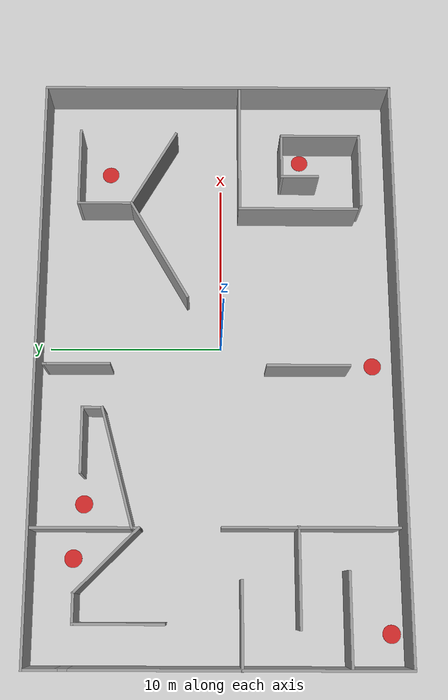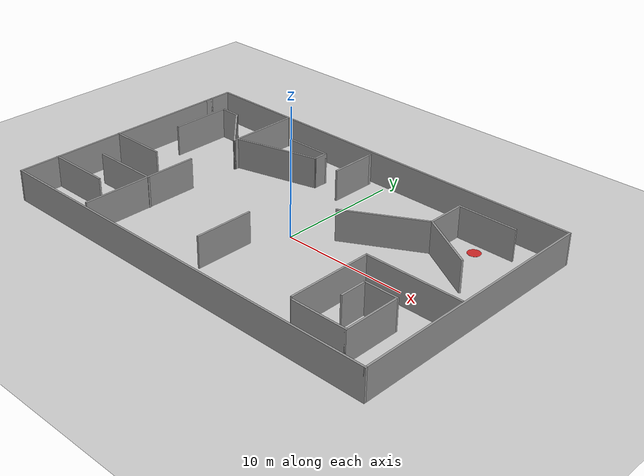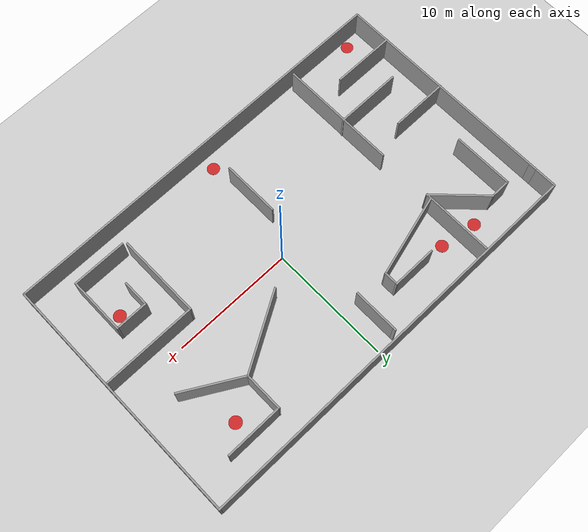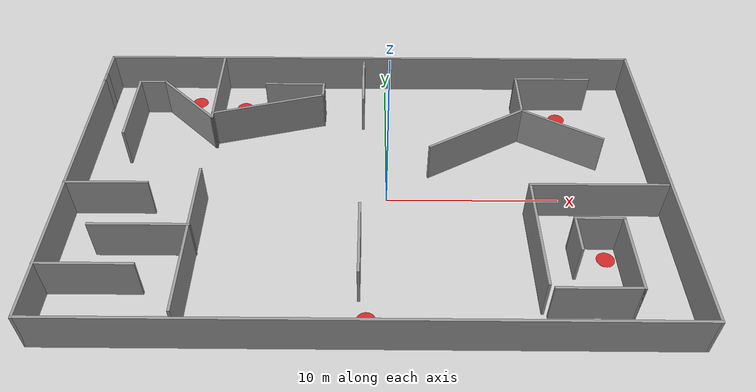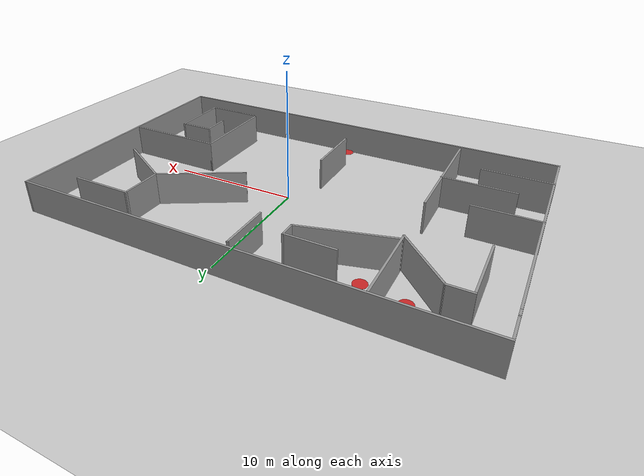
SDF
<sdf version="1.6">
 <world name="default">
  <light name="sun" type="directional">
   <pose>0 0 10 0 -0 0</pose>
   <diffuse>0.8 0.8 0.8 1</diffuse>
   <specular>0.2 0.2 0.2 1</specular>
   <attenuation>
    <range>1000</range>
    <constant>0.9</constant>
    <linear>0.01</linear>
    <quadratic>0.001</quadratic>
   </attenuation>
   <direction>-0.5 0.1 -0.9</direction>
  </light>
  <model name="ground_plane">
   <static>1</static>
   <link name="link">
    <collision name="collision">
     <geometry><plane><normal>0 0 1</normal><size>100 100</size></plane></geometry>
     <surface>
      <contact><collide_bitmask>65535</collide_bitmask></contact>
      <friction><ode><mu>100</mu><mu2>50</mu2></ode></friction>
     </surface>
    </collision>
    <visual name="visual">
     <cast_shadows>0</cast_shadows>
     <geometry><plane><normal>0 0 1</normal><size>100 100</size></plane></geometry>
     <material>
      <script><uri>file://media/materials/scripts/gazebo.material</uri><name>Gazebo/Grey</name></script>
     </material>
    </visual>
   </link>
  </model>
  <gravity>0 0 -9.8</gravity>
  <magnetic_field>6e-06 2.3e-05 -4.2e-05</magnetic_field>
  <atmosphere type="adiabatic"/>
  <physics name="default_physics" default="0" type="ode">
   <max_step_size>0.001</max_step_size>
   <real_time_factor>1</real_time_factor>
   <real_time_update_rate>1000</real_time_update_rate>
  </physics>
  <scene><ambient>0.4 0.4 0.4 1</ambient><background>0.7 0.7 0.7 1</background><shadows>1</shadows></scene>
  <audio><device>default</device></audio>
  <spherical_coordinates>
   <surface_model>EARTH_WGS84</surface_model>
   <latitude_deg>0</latitude_deg>
   <longitude_deg>0</longitude_deg>
   <elevation>0</elevation>
   <heading_deg>0</heading_deg>
  </spherical_coordinates>
  <model name="maze2">
   <pose>-1.10759 0.206475 0 0 -0 0</pose>
   <link name="Wall_14">
    <collision name="Wall_14_Collision">
     <geometry><box><size>18.25 0.15 2.5</size></box></geometry>
     <pose>0 0 1.25 0 -0 0</pose>
    </collision>
    <visual name="Wall_14_Visual">
     <pose>0 0 1.25 0 -0 0</pose>
     <geometry><box><size>18.25 0.15 2.5</size></box></geometry>
     <material>
      <script><uri>file://media/materials/scripts/gazebo.material</uri><name>Gazebo/Grey</name></script>
      <ambient>1 1 1 1</ambient>
     </material>
     <meta><layer>0</layer></meta>
    </visual>
    <pose>-16.7907 -1.25 0 0 -0 -1.5708</pose>
   </link>
   <link name="Wall_15">
    <collision name="Wall_15_Collision">
     <geometry><box><size>33.75 0.15 2.5</size></box></geometry>
     <pose>0 0 1.25 0 -0 0</pose>
    </collision>
    <visual name="Wall_15_Visual">
     <pose>0 0 1.25 0 -0 0</pose>
     <geometry><box><size>33.75 0.15 2.5</size></box></geometry>
     <material>
      <script><uri>file://media/materials/scripts/gazebo.material</uri><name>Gazebo/Grey</name></script>
      <ambient>1 1 1 1</ambient>
     </material>
     <meta><layer>0</layer></meta>
    </visual>
    <pose>0.009349 -10.3 0 0 -0 0</pose>
   </link>
   <link name="Wall_16">
    <collision name="Wall_16_Collision">
     <geometry><box><size>20.75 0.15 2.5</size></box></geometry>
     <pose>0 0 1.25 0 -0 0</pose>
    </collision>
    <visual name="Wall_16_Visual">
     <pose>0 0 1.25 0 -0 0</pose>
     <geometry><box><size>20.75 0.15 2.5</size></box></geometry>
     <material>
      <script><uri>file://media/materials/scripts/gazebo.material</uri><name>Gazebo/Grey</name></script>
      <ambient>1 1 1 1</ambient>
     </material>
     <meta><layer>0</layer></meta>
    </visual>
    <pose>16.8093 0 0 0 -0 1.5708</pose>
   </link>
   <link name="Wall_17">
    <collision name="Wall_17_Collision">
     <geometry><box><size>33.75 0.15 2.5</size></box></geometry>
     <pose>0 0 1.25 0 -0 0</pose>
    </collision>
    <visual name="Wall_17_Visual">
     <pose>0 0 1.25 0 -0 0</pose>
     <geometry><box><size>33.75 0.15 2.5</size></box></geometry>
     <material>
      <script><uri>file://media/materials/scripts/gazebo.material</uri><name>Gazebo/Grey</name></script>
      <ambient>1 1 1 1</ambient>
     </material>
     <meta><layer>0</layer></meta>
    </visual>
    <pose>0.009349 10.3 0 0 -0 3.14159</pose>
   </link>
   <link name="Wall_18">
    <collision name="Wall_18_Collision">
     <geometry><box><size>2 0.15 2.5</size></box></geometry>
     <pose>0 0 1.25 0 -0 0</pose>
    </collision>
    <visual name="Wall_18_Visual">
     <pose>0 0 1.25 0 -0 0</pose>
     <geometry><box><size>2 0.15 2.5</size></box></geometry>
     <material>
      <script><uri>file://media/materials/scripts/gazebo.material</uri><name>Gazebo/Grey</name></script>
      <ambient>1 1 1 1</ambient>
     </material>
     <meta><layer>0</layer></meta>
    </visual>
    <pose>-16.7907 9.375 0 0 -0 -1.5708</pose>
   </link>
   <link name="Wall_19">
    <collision name="Wall_19_Collision">
     <geometry><box><size>0.8 0.15 2.5</size></box></geometry>
     <pose>0 0 1.25 0 -0 0</pose>
    </collision>
    <visual name="Wall_19_Visual">
     <pose>0 0 1.25 0 -0 0</pose>
     <geometry><box><size>0.8 0.15 2.5</size></box></geometry>
     <material>
      <script><uri>file://media/materials/scripts/gazebo.material</uri><name>Gazebo/Grey</name></script>
      <ambient>1 1 1 1</ambient>
     </material>
     <meta><layer>0</layer></meta>
    </visual>
    <pose>-16.7907 8.125 0 0 -0 -1.5708</pose>
   </link>
   <link name="Wall_21">
    <collision name="Wall_21_Collision">
     <geometry><box><size>6 0.15 2.5</size></box></geometry>
     <pose>0 0 1.25 0 -0 0</pose>
    </collision>
    <visual name="Wall_21_Visual">
     <pose>0 0 1.25 0 -0 0</pose>
     <geometry><box><size>6 0.15 2.5</size></box></geometry>
     <material>
      <script><uri>file://media/materials/scripts/gazebo.material</uri><name>Gazebo/Grey</name></script>
      <ambient>1 1 1 1</ambient>
     </material>
     <meta><layer>0</layer></meta>
    </visual>
    <pose>-9.44778 7.20738 0 0 -0 -1.5708</pose>
   </link>
   <link name="Wall_22">
    <collision name="Wall_22_Collision">
     <geometry><box><size>5 0.15 2.5</size></box></geometry>
     <pose>0 0 1.25 0 -0 0</pose>
    </collision>
    <visual name="Wall_22_Visual">
     <pose>0 0 1.25 0 -0 0</pose>
     <geometry><box><size>5 0.15 2.5</size></box></geometry>
     <material>
      <script><uri>file://media/materials/scripts/gazebo.material</uri><name>Gazebo/Grey</name></script>
      <ambient>1 1 1 1</ambient>
     </material>
     <meta><layer>0</layer></meta>
    </visual>
    <pose>-11.1625 5.99711 0 0 -0 2.35619</pose>
   </link>
   <link name="Wall_23">
    <collision name="Wall_23_Collision">
     <geometry><box><size>1.75 0.15 2.5</size></box></geometry>
     <pose>0 0 1.25 0 -0 0</pose>
    </collision>
    <visual name="Wall_23_Visual">
     <pose>0 0 1.25 0 -0 0</pose>
     <geometry><box><size>1.75 0.15 2.5</size></box></geometry>
     <material>
      <script><uri>file://media/materials/scripts/gazebo.material</uri><name>Gazebo/Grey</name></script>
      <ambient>1 1 1 1</ambient>
     </material>
     <meta><layer>0</layer></meta>
    </visual>
    <pose>-13.6773 7.71184 0 0 -0 3.14159</pose>
   </link>
   <link name="Wall_24">
    <collision name="Wall_24_Collision">
     <geometry><box><size>5 0.15 2.5</size></box></geometry>
     <pose>0 0 1.25 0 -0 0</pose>
    </collision>
    <visual name="Wall_24_Visual">
     <pose>0 0 1.25 0 -0 0</pose>
     <geometry><box><size>5 0.15 2.5</size></box></geometry>
     <material>
      <script><uri>file://media/materials/scripts/gazebo.material</uri><name>Gazebo/Grey</name></script>
      <ambient>1 1 1 1</ambient>
     </material>
     <meta><layer>0</layer></meta>
    </visual>
    <pose>-14.4773 5.28684 0 0 -0 -1.5708</pose>
   </link>
   <link name="Wall_26">
    <collision name="Wall_26_Collision">
     <geometry><box><size>9.75 0.15 2.5</size></box></geometry>
     <pose>0 0 1.25 0 -0 0</pose>
    </collision>
    <visual name="Wall_26_Visual">
     <pose>0 0 1.25 0 -0 0</pose>
     <geometry><box><size>9.75 0.15 2.5</size></box></geometry>
     <material>
      <script><uri>file://media/materials/scripts/gazebo.material</uri><name>Gazebo/Grey</name></script>
      <ambient>1 1 1 1</ambient>
     </material>
     <meta><layer>0</layer></meta>
    </visual>
    <pose>-9.40756 -5.04623 0 0 -0 -1.5708</pose>
   </link>
   <link name="Wall_28">
    <collision name="Wall_28_Collision">
     <geometry><box><size>4.75 0.15 2.5</size></box></geometry>
     <pose>0 0 1.25 0 -0 0</pose>
    </collision>
    <visual name="Wall_28_Visual">
     <pose>0 0 1.25 0 -0 0</pose>
     <geometry><box><size>4.75 0.15 2.5</size></box></geometry>
     <material>
      <script><uri>file://media/materials/scripts/gazebo.material</uri><name>Gazebo/Grey</name></script>
      <ambient>1 1 1 1</ambient>
     </material>
     <meta><layer>0</layer></meta>
    </visual>
    <pose>-14.5094 -1.29213 0 0 -0 0</pose>
   </link>
   <link name="Wall_30">
    <collision name="Wall_30_Collision">
     <geometry><box><size>5.5 0.15 2.5</size></box></geometry>
     <pose>0 0 1.25 0 -0 0</pose>
    </collision>
    <visual name="Wall_30_Visual">
     <pose>0 0 1.25 0 -0 0</pose>
     <geometry><box><size>5.5 0.15 2.5</size></box></geometry>
     <material>
      <script><uri>file://media/materials/scripts/gazebo.material</uri><name>Gazebo/Grey</name></script>
      <ambient>1 1 1 1</ambient>
     </material>
     <meta><layer>0</layer></meta>
    </visual>
    <pose>-12.0423 -4.38962 0 0 -0 3.14159</pose>
   </link>
   <link name="Wall_33">
    <collision name="Wall_33_Collision">
     <geometry><box><size>5.25 0.15 2.5</size></box></geometry>
     <pose>0 0 1.25 0 -0 0</pose>
    </collision>
    <visual name="Wall_33_Visual">
     <pose>0 0 1.25 0 -0 0</pose>
     <geometry><box><size>5.25 0.15 2.5</size></box></geometry>
     <material>
      <script><uri>file://media/materials/scripts/gazebo.material</uri><name>Gazebo/Grey</name></script>
      <ambient>1 1 1 1</ambient>
     </material>
     <meta><layer>0</layer></meta>
    </visual>
    <pose>-14.2594 -7.04462 0 0 -0 0</pose>
   </link>
   <link name="Wall_35">
    <collision name="Wall_35_Collision">
     <geometry><box><size>7 0.15 2.5</size></box></geometry>
     <pose>0 0 1.25 0 -0 0</pose>
    </collision>
    <visual name="Wall_35_Visual">
     <pose>0 0 1.25 0 -0 0</pose>
     <geometry><box><size>7 0.15 2.5</size></box></geometry>
     <material>
      <script><uri>file://media/materials/scripts/gazebo.material</uri><name>Gazebo/Grey</name></script>
      <ambient>1 1 1 1</ambient>
     </material>
     <meta><layer>0</layer></meta>
    </visual>
    <pose>9.01647 -4.70575 0 0 -0 1.5708</pose>
   </link>
   <link name="Wall_36">
    <collision name="Wall_36_Collision">
     <geometry><box><size>7.75 0.15 2.5</size></box></geometry>
     <pose>0 0 1.25 0 -0 0</pose>
    </collision>
    <visual name="Wall_36_Visual">
     <pose>0 0 1.25 0 -0 0</pose>
     <geometry><box><size>7.75 0.15 2.5</size></box></geometry>
     <material>
      <script><uri>file://media/materials/scripts/gazebo.material</uri><name>Gazebo/Grey</name></script>
      <ambient>1 1 1 1</ambient>
     </material>
     <meta><layer>0</layer></meta>
    </visual>
    <pose>12.8165 -1.28075 0 0 -0 0</pose>
   </link>
   <link name="Wall_38">
    <collision name="Wall_38_Collision">
     <geometry><box><size>4.5 0.15 2.5</size></box></geometry>
     <pose>0 0 1.25 0 -0 0</pose>
    </collision>
    <visual name="Wall_38_Visual">
     <pose>0 0 1.25 0 -0 0</pose>
     <geometry><box><size>4.5 0.15 2.5</size></box></geometry>
     <material>
      <script><uri>file://media/materials/scripts/gazebo.material</uri><name>Gazebo/Grey</name></script>
      <ambient>1 1 1 1</ambient>
     </material>
     <meta><layer>0</layer></meta>
    </visual>
    <pose>11.4731 -8.37211 0 0 -0 0</pose>
   </link>
   <link name="Wall_39">
    <collision name="Wall_39_Collision">
     <geometry><box><size>4.75 0.15 2.5</size></box></geometry>
     <pose>0 0 1.25 0 -0 0</pose>
    </collision>
    <visual name="Wall_39_Visual">
     <pose>0 0 1.25 0 -0 0</pose>
     <geometry><box><size>4.75 0.15 2.5</size></box></geometry>
     <material>
      <script><uri>file://media/materials/scripts/gazebo.material</uri><name>Gazebo/Grey</name></script>
      <ambient>1 1 1 1</ambient>
     </material>
     <meta><layer>0</layer></meta>
    </visual>
    <pose>13.6481 -6.07211 0 0 -0 1.5708</pose>
   </link>
   <link name="Wall_40">
    <collision name="Wall_40_Collision">
     <geometry><box><size>2.75 0.15 2.5</size></box></geometry>
     <pose>0 0 1.25 0 -0 0</pose>
    </collision>
    <visual name="Wall_40_Visual">
     <pose>0 0 1.25 0 -0 0</pose>
     <geometry><box><size>2.75 0.15 2.5</size></box></geometry>
     <material>
      <script><uri>file://media/materials/scripts/gazebo.material</uri><name>Gazebo/Grey</name></script>
      <ambient>1 1 1 1</ambient>
     </material>
     <meta><layer>0</layer></meta>
    </visual>
    <pose>12.3481 -3.77211 0 0 -0 3.14159</pose>
   </link>
   <link name="Wall_41">
    <collision name="Wall_41_Collision">
     <geometry><box><size>2.25 0.15 2.5</size></box></geometry>
     <pose>0 0 1.25 0 -0 0</pose>
    </collision>
    <visual name="Wall_41_Visual">
     <pose>0 0 1.25 0 -0 0</pose>
     <geometry><box><size>2.25 0.15 2.5</size></box></geometry>
     <material>
      <script><uri>file://media/materials/scripts/gazebo.material</uri><name>Gazebo/Grey</name></script>
      <ambient>1 1 1 1</ambient>
     </material>
     <meta><layer>0</layer></meta>
    </visual>
    <pose>11.0481 -4.82211 0 0 -0 -1.5708</pose>
   </link>
   <link name="Wall_43">
    <collision name="Wall_43_Collision">
     <geometry><box><size>4.75 0.15 2.5</size></box></geometry>
     <pose>0 0 1.25 0 -0 0</pose>
    </collision>
    <visual name="Wall_43_Visual">
     <pose>0 0 1.25 0 -0 0</pose>
     <geometry><box><size>4.75 0.15 2.5</size></box></geometry>
     <material>
      <script><uri>file://media/materials/scripts/gazebo.material</uri><name>Gazebo/Grey</name></script>
      <ambient>1 1 1 1</ambient>
     </material>
     <meta><layer>0</layer></meta>
    </visual>
    <pose>-0.396678 -5.10666 0 0 -0 1.5708</pose>
   </link>
   <link name="Wall_46">
    <collision name="Wall_46_Collision">
     <geometry><box><size>3.75 0.15 2.5</size></box></geometry>
     <pose>0 0 1.25 0 -0 0</pose>
    </collision>
    <visual name="Wall_46_Visual">
     <pose>0 0 1.25 0 -0 0</pose>
     <geometry><box><size>3.75 0.15 2.5</size></box></geometry>
     <material>
      <script><uri>file://media/materials/scripts/gazebo.material</uri><name>Gazebo/Grey</name></script>
      <ambient>1 1 1 1</ambient>
     </material>
     <meta><layer>0</layer></meta>
    </visual>
    <pose>-0.322451 7.91808 0 0 -0 1.5708</pose>
   </link>
   <link name="Wall_47">
    <collision name="Wall_47_Collision">
     <geometry><box><size>0.25 0.15 2.5</size></box></geometry>
     <pose>0 0 1.25 0 -0 0</pose>
    </collision>
    <visual name="Wall_47_Visual">
     <pose>0 0 1.25 0 -0 0</pose>
     <geometry><box><size>0.25 0.15 2.5</size></box></geometry>
     <material>
      <script><uri>file://media/materials/scripts/gazebo.material</uri><name>Gazebo/Grey</name></script>
      <ambient>1 1 1 1</ambient>
     </material>
     <meta><layer>0</layer></meta>
    </visual>
    <pose>-0.322451 9.76808 0 0 -0 1.5708</pose>
   </link>
   <link name="Wall_49">
    <collision name="Wall_49_Collision">
     <geometry><box><size>7 0.15 2.5</size></box></geometry>
     <pose>0 0 1.25 0 -0 0</pose>
    </collision>
    <visual name="Wall_49_Visual">
     <pose>0 0 1.25 0 -0 0</pose>
     <geometry><box><size>7 0.15 2.5</size></box></geometry>
     <material>
      <script><uri>file://media/materials/scripts/gazebo.material</uri><name>Gazebo/Grey</name></script>
      <ambient>1 1 1 1</ambient>
     </material>
     <meta><layer>0</layer></meta>
    </visual>
    <pose>-6.13915 5.55177 0 0 -0 0.261799</pose>
   </link>
   <link name="Wall_50">
    <collision name="Wall_50_Collision">
     <geometry><box><size>1.25 0.15 2.5</size></box></geometry>
     <pose>0 0 1.25 0 -0 0</pose>
    </collision>
    <visual name="Wall_50_Visual">
     <pose>0 0 1.25 0 -0 0</pose>
     <geometry><box><size>1.25 0.15 2.5</size></box></geometry>
     <material>
      <script><uri>file://media/materials/scripts/gazebo.material</uri><name>Gazebo/Grey</name></script>
      <ambient>1 1 1 1</ambient>
     </material>
     <meta><layer>0</layer></meta>
    </visual>
    <pose>-2.83086 6.98822 0 0 -0 1.5708</pose>
   </link>
   <link name="Wall_51">
    <collision name="Wall_51_Collision">
     <geometry><box><size>3.75 0.15 2.5</size></box></geometry>
     <pose>0 0 1.25 0 -0 0</pose>
    </collision>
    <visual name="Wall_51_Visual">
     <pose>0 0 1.25 0 -0 0</pose>
     <geometry><box><size>3.75 0.15 2.5</size></box></geometry>
     <material>
      <script><uri>file://media/materials/scripts/gazebo.material</uri><name>Gazebo/Grey</name></script>
      <ambient>1 1 1 1</ambient>
     </material>
     <meta><layer>0</layer></meta>
    </visual>
    <pose>-4.63086 7.53822 0 0 -0 3.14159</pose>
   </link>
   <link name="Wall_53">
    <collision name="Wall_53_Collision">
     <geometry><box><size>6.75 0.15 2.5</size></box></geometry>
     <pose>0 0 1.25 0 -0 0</pose>
    </collision>
    <visual name="Wall_53_Visual">
     <pose>0 0 1.25 0 -0 0</pose>
     <geometry><box><size>6.75 0.15 2.5</size></box></geometry>
     <material>
      <script><uri>file://media/materials/scripts/gazebo.material</uri><name>Gazebo/Grey</name></script>
      <ambient>1 1 1 1</ambient>
     </material>
     <meta><layer>0</layer></meta>
    </visual>
    <pose>6.50236 3.40085 0 0 -0 0.523599</pose>
   </link>
   <link name="Wall_54">
    <collision name="Wall_54_Collision">
     <geometry><box><size>3.25 0.15 2.5</size></box></geometry>
     <pose>0 0 1.25 0 -0 0</pose>
    </collision>
    <visual name="Wall_54_Visual">
     <pose>0 0 1.25 0 -0 0</pose>
     <geometry><box><size>3.25 0.15 2.5</size></box></geometry>
     <material>
      <script><uri>file://media/materials/scripts/gazebo.material</uri><name>Gazebo/Grey</name></script>
      <ambient>1 1 1 1</ambient>
     </material>
     <meta><layer>0</layer></meta>
    </visual>
    <pose>9.36024 6.60086 0 0 -0 1.5708</pose>
   </link>
   <model name="waypoint_1">
    <pose>-11 8 0.5 0 -0 0</pose>
    <link name="link">
     <inertial>
      <mass>1</mass>
      <inertia><ixx>0.145833</ixx><ixy>0</ixy><ixz>0</ixz><iyy>0.145833</iyy><iyz>0</iyz><izz>0.125</izz></inertia>
     </inertial>
     <collision name="collision">
      <geometry><cylinder><radius>0.5</radius><length>.01</length></cylinder></geometry>
     </collision>
     <visual name="visual">
      <geometry><cylinder><radius>0.5</radius><length>.01</length></cylinder></geometry>
      <material>
       <script><name>Gazebo/Red</name><uri>file://media/materials/scripts/gazebo.material</uri></script>
      </material>
     </visual>
    </link>
   </model>
   <model name="waypoint_2">
    <pose>-15 -9.5 0.5 0 -0 0</pose>
    <link name="link">
     <inertial>
      <mass>1</mass>
      <inertia><ixx>0.145833</ixx><ixy>0</ixy><ixz>0</ixz><iyy>0.145833</iyy><iyz>0</iyz><izz>0.125</izz></inertia>
     </inertial>
     <collision name="collision">
      <geometry><cylinder><radius>0.5</radius><length>.01</length></cylinder></geometry>
     </collision>
     <visual name="visual">
      <geometry><cylinder><radius>0.5</radius><length>.01</length></cylinder></geometry>
      <material>
       <script><name>Gazebo/Red</name><uri>file://media/materials/scripts/gazebo.material</uri></script>
      </material>
     </visual>
    </link>
   </model>
   <model name="waypoint_3">
    <pose>-8 7.5 0.5 0 -0 0</pose>
    <link name="link">
     <inertial>
      <mass>1</mass>
      <inertia><ixx>0.145833</ixx><ixy>0</ixy><ixz>0</ixz><iyy>0.145833</iyy><iyz>0</iyz><izz>0.125</izz></inertia>
     </inertial>
     <collision name="collision">
      <geometry><cylinder><radius>0.5</radius><length>.01</length></cylinder></geometry>
     </collision>
     <visual name="visual">
      <geometry><cylinder><radius>0.5</radius><length>.01</length></cylinder></geometry>
      <material>
       <script><name>Gazebo/Red</name><uri>file://media/materials/scripts/gazebo.material</uri></script>
      </material>
     </visual>
    </link>
   </model>
   <model name="waypoint_4">
    <pose>0 -9 0.5 0 -0 0</pose>
    <link name="link">
     <inertial>
      <mass>1</mass>
      <inertia><ixx>0.145833</ixx><ixy>0</ixy><ixz>0</ixz><iyy>0.145833</iyy><iyz>0</iyz><izz>0.125</izz></inertia>
     </inertial>
     <collision name="collision">
      <geometry><cylinder><radius>0.5</radius><length>.01</length></cylinder></geometry>
     </collision>
     <visual name="visual">
      <geometry><cylinder><radius>0.5</radius><length>.01</length></cylinder></geometry>
      <material>
       <script><name>Gazebo/Red</name><uri>file://media/materials/scripts/gazebo.material</uri></script>
      </material>
     </visual>
    </link>
   </model>
   <model name="waypoint_5">
    <pose>12.8 -5 0.5 0 -0 0</pose>
    <link name="link">
     <inertial>
      <mass>1</mass>
      <inertia><ixx>0.145833</ixx><ixy>0</ixy><ixz>0</ixz><iyy>0.145833</iyy><iyz>0</iyz><izz>0.125</izz></inertia>
     </inertial>
     <collision name="collision">
      <geometry><cylinder><radius>0.5</radius><length>.01</length></cylinder></geometry>
     </collision>
     <visual name="visual">
      <geometry><cylinder><radius>0.5</radius><length>.01</length></cylinder></geometry>
      <material>
       <script><name>Gazebo/Red</name><uri>file://media/materials/scripts/gazebo.material</uri></script>
      </material>
     </visual>
    </link>
   </model>
   <model name="waypoint_6">
    <pose>12 6.5 0.5 0 -0 0</pose>
    <link name="link">
     <inertial>
      <mass>1</mass>
      <inertia><ixx>0.145833</ixx><ixy>0</ixy><ixz>0</ixz><iyy>0.145833</iyy><iyz>0</iyz><izz>0.125</izz></inertia>
     </inertial>
     <collision name="collision">
      <geometry><cylinder><radius>0.5</radius><length>.01</length></cylinder></geometry>
     </collision>
     <visual name="visual">
      <geometry><cylinder><radius>0.5</radius><length>.01</length></cylinder></geometry>
      <material>
       <script><name>Gazebo/Red</name><uri>file://media/materials/scripts/gazebo.material</uri></script>
      </material>
     </visual>
    </link>
   </model>
   <link name="Wall_55">
    <collision name="Wall_55_Collision">
     <geometry><box><size>4.75 0.15 2.5</size></box></geometry>
     <pose>0 0 1.25 0 -0 0</pose>
    </collision>
    <visual name="Wall_55_Visual">
     <pose>0 0 1.25 0 -0 0</pose>
     <geometry><box><size>4.75 0.15 2.5</size></box></geometry>
     <material>
      <script><uri>file://media/materials/scripts/gazebo.material</uri><name>Gazebo/Grey</name></script>
      <ambient>1 1 1 1</ambient>
     </material>
     <meta><layer>0</layer></meta>
    </visual>
    <pose>11.6602 8.15085 0 0 -0 0</pose>
   </link>
   <link name="Wall_57">
    <collision name="Wall_57_Collision">
     <geometry><box><size>5.25 0.15 2.5</size></box></geometry>
     <pose>0 0 1.25 0 -0 0</pose>
    </collision>
    <visual name="Wall_57_Visual">
     <pose>0 0 1.25 0 -0 0</pose>
     <geometry><box><size>5.25 0.15 2.5</size></box></geometry>
     <material>
      <script><uri>file://media/materials/scripts/gazebo.material</uri><name>Gazebo/Grey</name></script>
      <ambient>1 1 1 1</ambient>
     </material>
     <meta><layer>0</layer></meta>
    </visual>
    <pose>11.5686 3.77585 0 0 -0 -0.523599</pose>
   </link>
   <static>1</static>
  </model>
 </world>
</sdf>
